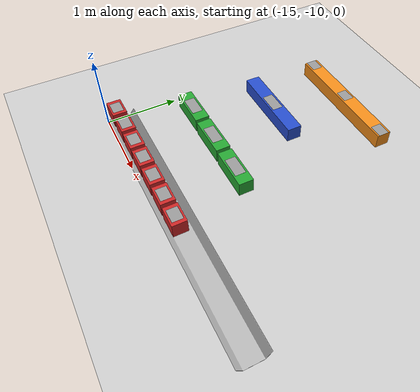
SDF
<sdf version="1.6">
 <world name="default">
  <model name="ground_plane">
   <static>1</static>
   <link name="link">
    <collision name="collision">
     <geometry><plane><normal>0 0 1</normal><size>100 100</size></plane></geometry>
     <surface>
      <contact><collide_bitmask>65535</collide_bitmask></contact>
      <friction><ode><mu>100</mu><mu2>50</mu2></ode></friction>
     </surface>
    </collision>
    <visual name="visual">
     <cast_shadows>0</cast_shadows>
     <geometry><plane><normal>0 0 1</normal><size>100 100</size></plane></geometry>
     <material>
      <script><uri>file://media/materials/scripts/gazebo.material</uri><name>Gazebo/Grey</name></script>
     </material>
    </visual>
   </link>
  </model>
  <model name="channel">
   <link name="base_link">
    <pose>0 0 0.05 0 -0 0</pose>
    <inertial>
     <mass>0.01</mass>
     <inertia><ixx>0.001</ixx><ixy>0</ixy><ixz>0</ixz><iyy>0.01</iyy><iyz>0</iyz><izz>0.01</izz></inertia>
    </inertial>
    <collision name="channel_collision">
     <geometry>
      <mesh><uri>model://larics_gazebo_worlds/models/mbzirc/channel.dae</uri><scale>0.001 0.001 0.001</scale></mesh>
     </geometry>
    </collision>
    <visual name="channel_visual">
     <geometry>
      <mesh><uri>model://larics_gazebo_worlds/models/mbzirc/channel.dae</uri><scale>0.001 0.001 0.001</scale></mesh>
     </geometry>
    </visual>
   </link>
   <static>1</static>
   <pose>-12.9973 -9.81885 0 0 -0 0</pose>
  </model>
  <model name="channel">
   <link name="base_link">
    <pose>0 0 0.05 0 -0 0</pose>
    <inertial>
     <mass>0.01</mass>
     <inertia><ixx>0.001</ixx><ixy>0</ixy><ixz>0</ixz><iyy>0.01</iyy><iyz>0</iyz><izz>0.01</izz></inertia>
    </inertial>
    <collision name="channel_collision">
     <geometry>
      <mesh><uri>model://larics_gazebo_worlds/models/mbzirc/channel.dae</uri><scale>0.001 0.001 0.001</scale></mesh>
     </geometry>
    </collision>
    <visual name="channel_visual">
     <geometry>
      <mesh><uri>model://larics_gazebo_worlds/models/mbzirc/channel.dae</uri><scale>0.001 0.001 0.001</scale></mesh>
     </geometry>
    </visual>
   </link>
   <static>1</static>
   <pose>-12.9973 -9.81885 0 0 -0 0</pose>
  </model>
  <model name="channel">
   <link name="base_link">
    <pose>0 0 0.05 0 -0 0</pose>
    <inertial>
     <mass>0.01</mass>
     <inertia><ixx>0.001</ixx><ixy>0</ixy><ixz>0</ixz><iyy>0.01</iyy><iyz>0</iyz><izz>0.01</izz></inertia>
    </inertial>
    <collision name="channel_collision">
     <geometry>
      <mesh><uri>model://larics_gazebo_worlds/models/mbzirc/channel.dae</uri><scale>0.001 0.001 0.001</scale></mesh>
     </geometry>
    </collision>
    <visual name="channel_visual">
     <geometry>
      <mesh><uri>model://larics_gazebo_worlds/models/mbzirc/channel.dae</uri><scale>0.001 0.001 0.001</scale></mesh>
     </geometry>
    </visual>
   </link>
   <static>1</static>
   <pose>-12.9973 -9.81885 0 0 -0 0</pose>
  </model>
  <model name="channel">
   <link name="base_link">
    <pose>0 0 0.05 0 -0 0</pose>
    <inertial>
     <mass>0.01</mass>
     <inertia><ixx>0.001</ixx><ixy>0</ixy><ixz>0</ixz><iyy>0.01</iyy><iyz>0</iyz><izz>0.01</izz></inertia>
    </inertial>
    <collision name="channel_collision">
     <geometry>
      <mesh><uri>model://larics_gazebo_worlds/models/mbzirc/channel.dae</uri><scale>0.001 0.001 0.001</scale></mesh>
     </geometry>
    </collision>
    <visual name="channel_visual">
     <geometry>
      <mesh><uri>model://larics_gazebo_worlds/models/mbzirc/channel.dae</uri><scale>0.001 0.001 0.001</scale></mesh>
     </geometry>
    </visual>
   </link>
   <static>1</static>
   <pose>-12.9973 -9.81885 0 0 -0 0</pose>
  </model>
  <model name="channel">
   <link name="base_link">
    <pose>0 0 0.05 0 -0 0</pose>
    <inertial>
     <mass>0.01</mass>
     <inertia><ixx>0.001</ixx><ixy>0</ixy><ixz>0</ixz><iyy>0.01</iyy><iyz>0</iyz><izz>0.01</izz></inertia>
    </inertial>
    <collision name="channel_collision">
     <geometry>
      <mesh><uri>model://larics_gazebo_worlds/models/mbzirc/channel.dae</uri><scale>0.001 0.001 0.001</scale></mesh>
     </geometry>
    </collision>
    <visual name="channel_visual">
     <geometry>
      <mesh><uri>model://larics_gazebo_worlds/models/mbzirc/channel.dae</uri><scale>0.001 0.001 0.001</scale></mesh>
     </geometry>
    </visual>
   </link>
   <static>1</static>
   <pose>-12.9973 -9.81885 0 0 -0 0</pose>
  </model>
  <model name="channel">
   <link name="base_link">
    <pose>0 0 0.05 0 -0 0</pose>
    <inertial>
     <mass>0.01</mass>
     <inertia><ixx>0.001</ixx><ixy>0</ixy><ixz>0</ixz><iyy>0.01</iyy><iyz>0</iyz><izz>0.01</izz></inertia>
    </inertial>
    <collision name="channel_collision">
     <geometry>
      <mesh><uri>model://larics_gazebo_worlds/models/mbzirc/channel.dae</uri><scale>0.001 0.001 0.001</scale></mesh>
     </geometry>
    </collision>
    <visual name="channel_visual">
     <geometry>
      <mesh><uri>model://larics_gazebo_worlds/models/mbzirc/channel.dae</uri><scale>0.001 0.001 0.001</scale></mesh>
     </geometry>
    </visual>
   </link>
   <static>1</static>
   <pose>-12.9973 -9.81885 0 0 -0 0</pose>
  </model>
  <model name="channel">
   <link name="base_link">
    <pose>0 0 0.05 0 -0 0</pose>
    <inertial>
     <mass>0.01</mass>
     <inertia><ixx>0.001</ixx><ixy>0</ixy><ixz>0</ixz><iyy>0.01</iyy><iyz>0</iyz><izz>0.01</izz></inertia>
    </inertial>
    <collision name="channel_collision">
     <geometry>
      <mesh><uri>model://larics_gazebo_worlds/models/mbzirc/channel.dae</uri><scale>0.001 0.001 0.001</scale></mesh>
     </geometry>
    </collision>
    <visual name="channel_visual">
     <geometry>
      <mesh><uri>model://larics_gazebo_worlds/models/mbzirc/channel.dae</uri><scale>0.001 0.001 0.001</scale></mesh>
     </geometry>
    </visual>
   </link>
   <static>1</static>
   <pose>-12.9973 -9.81885 0 0 -0 0</pose>
  </model>
  <model name="brick_red_2">
   <link name="base_link">
    <inertial>
     <mass>0.01</mass>
     <inertia><ixx>0.001</ixx><ixy>0</ixy><ixz>0</ixz><iyy>0.01</iyy><iyz>0</iyz><izz>0.01</izz></inertia>
    </inertial>
    <collision name="base_link_collision"><geometry><box><size>0.3 0.2 0.2</size></box></geometry></collision>
    <collision name="base_link_fixed_joint_lump__magnet_patch_collision_1">
     <pose>0 0 0.1 0 -0 0</pose>
     <geometry><box><size>0.1 0.025 0.0005</size></box></geometry>
    </collision>
    <visual name="base_link_visual">
     <geometry><box><size>0.3 0.2 0.2</size></box></geometry>
     <material>
      <script><name>Gazebo/Red</name><uri>file://media/materials/scripts/gazebo.material</uri></script>
     </material>
    </visual>
    <visual name="base_link_fixed_joint_lump__magnet_patch_visual_1">
     <pose>0 0 0.1 0 -0 0</pose>
     <geometry><box><size>0.2 0.15 0.001</size></box></geometry>
     <material>
      <script><name>Gazebo/Gray</name><uri>file://media/materials/scripts/gazebo.material</uri></script>
     </material>
    </visual>
   </link>
   <static>0</static>
   <plugin name="dipole_magnet" filename="libstorm_gazebo_dipole_magnet.so">
    <dipole_moment>0 0 1</dipole_moment>
    <shouldPublish>1</shouldPublish>
    <topicNs>magnet</topicNs>
    <updateRate>100</updateRate>
    <gain>1.0</gain>
    <bodyName>base_link</bodyName>
    <xyzOffset>0 0 -0.1</xyzOffset>
    <rpyOffset>0 -0 0</rpyOffset>
   </plugin>
   <pose>-12.9001 -9.84372 0.102795 0.000441 -1e-06 5e-06</pose>
  </model>
  <model name="brick_red_5">
   <link name="base_link">
    <inertial>
     <mass>0.01</mass>
     <inertia><ixx>0.001</ixx><ixy>0</ixy><ixz>0</ixz><iyy>0.01</iyy><iyz>0</iyz><izz>0.01</izz></inertia>
    </inertial>
    <collision name="base_link_collision"><geometry><box><size>0.3 0.2 0.2</size></box></geometry></collision>
    <collision name="base_link_fixed_joint_lump__magnet_patch_collision_1">
     <pose>0 0 0.1 0 -0 0</pose>
     <geometry><box><size>0.1 0.025 0.0005</size></box></geometry>
    </collision>
    <visual name="base_link_visual">
     <geometry><box><size>0.3 0.2 0.2</size></box></geometry>
     <material>
      <script><name>Gazebo/Red</name><uri>file://media/materials/scripts/gazebo.material</uri></script>
     </material>
    </visual>
    <visual name="base_link_fixed_joint_lump__magnet_patch_visual_1">
     <pose>0 0 0.1 0 -0 0</pose>
     <geometry><box><size>0.2 0.15 0.001</size></box></geometry>
     <material>
      <script><name>Gazebo/Gray</name><uri>file://media/materials/scripts/gazebo.material</uri></script>
     </material>
    </visual>
   </link>
   <static>0</static>
   <plugin name="dipole_magnet" filename="libstorm_gazebo_dipole_magnet.so">
    <dipole_moment>0 0 1</dipole_moment>
    <shouldPublish>1</shouldPublish>
    <topicNs>magnet</topicNs>
    <updateRate>100</updateRate>
    <gain>1.0</gain>
    <bodyName>base_link</bodyName>
    <xyzOffset>0 0 -0.1</xyzOffset>
    <rpyOffset>0 -0 0</rpyOffset>
   </plugin>
   <pose>-13.2501 -9.84332 0.102794 0.000459 -0 -0.002704</pose>
  </model>
  <model name="brick_red_6">
   <link name="base_link">
    <inertial>
     <mass>0.01</mass>
     <inertia><ixx>0.001</ixx><ixy>0</ixy><ixz>0</ixz><iyy>0.01</iyy><iyz>0</iyz><izz>0.01</izz></inertia>
    </inertial>
    <collision name="base_link_collision"><geometry><box><size>0.3 0.2 0.2</size></box></geometry></collision>
    <collision name="base_link_fixed_joint_lump__magnet_patch_collision_1">
     <pose>0 0 0.1 0 -0 0</pose>
     <geometry><box><size>0.1 0.025 0.0005</size></box></geometry>
    </collision>
    <visual name="base_link_visual">
     <geometry><box><size>0.3 0.2 0.2</size></box></geometry>
     <material>
      <script><name>Gazebo/Red</name><uri>file://media/materials/scripts/gazebo.material</uri></script>
     </material>
    </visual>
    <visual name="base_link_fixed_joint_lump__magnet_patch_visual_1">
     <pose>0 0 0.1 0 -0 0</pose>
     <geometry><box><size>0.2 0.15 0.001</size></box></geometry>
     <material>
      <script><name>Gazebo/Gray</name><uri>file://media/materials/scripts/gazebo.material</uri></script>
     </material>
    </visual>
   </link>
   <static>0</static>
   <plugin name="dipole_magnet" filename="libstorm_gazebo_dipole_magnet.so">
    <dipole_moment>0 0 1</dipole_moment>
    <shouldPublish>1</shouldPublish>
    <topicNs>magnet</topicNs>
    <updateRate>100</updateRate>
    <gain>1.0</gain>
    <bodyName>base_link</bodyName>
    <xyzOffset>0 0 -0.1</xyzOffset>
    <rpyOffset>0 -0 0</rpyOffset>
   </plugin>
   <pose>-13.6 -9.84345 0.102785 0.000457 -0 -0.001813</pose>
  </model>
  <model name="brick_green">
   <link name="base_link">
    <inertial>
     <mass>0.01</mass>
     <inertia><ixx>0.001</ixx><ixy>0</ixy><ixz>0</ixz><iyy>0.01</iyy><iyz>0</iyz><izz>0.01</izz></inertia>
    </inertial>
    <collision name="base_link_collision"><geometry><box><size>0.6 0.2 0.2</size></box></geometry></collision>
    <collision name="base_link_fixed_joint_lump__magnet_patch_collision_1">
     <pose>0 0 0.1 0 -0 0</pose>
     <geometry><box><size>0.1 0.025 0.0005</size></box></geometry>
    </collision>
    <visual name="base_link_visual">
     <geometry><box><size>0.6 0.2 0.2</size></box></geometry>
     <material>
      <script><name>Gazebo/Green</name><uri>file://media/materials/scripts/gazebo.material</uri></script>
     </material>
    </visual>
    <visual name="base_link_fixed_joint_lump__magnet_patch_visual_1">
     <pose>0 0 0.1 0 -0 0</pose>
     <geometry><box><size>0.3 0.15 0.001</size></box></geometry>
     <material>
      <script><name>Gazebo/Gray</name><uri>file://media/materials/scripts/gazebo.material</uri></script>
     </material>
    </visual>
   </link>
   <static>0</static>
   <plugin name="dipole_magnet" filename="libstorm_gazebo_dipole_magnet.so">
    <dipole_moment>0 0 1</dipole_moment>
    <shouldPublish>1</shouldPublish>
    <topicNs>magnet</topicNs>
    <updateRate>100</updateRate>
    <gain>1.0</gain>
    <bodyName>base_link</bodyName>
    <xyzOffset>0 0 -0.1</xyzOffset>
    <rpyOffset>0 -0 0</rpyOffset>
   </plugin>
   <pose>-13.9 -8.87892 0.102795 0.000457 -4e-06 0.008422</pose>
  </model>
  <model name="brick_green_0">
   <link name="base_link">
    <inertial>
     <mass>0.01</mass>
     <inertia><ixx>0.001</ixx><ixy>0</ixy><ixz>0</ixz><iyy>0.01</iyy><iyz>0</iyz><izz>0.01</izz></inertia>
    </inertial>
    <collision name="base_link_collision"><geometry><box><size>0.6 0.2 0.2</size></box></geometry></collision>
    <collision name="base_link_fixed_joint_lump__magnet_patch_collision_1">
     <pose>0 0 0.1 0 -0 0</pose>
     <geometry><box><size>0.1 0.025 0.0005</size></box></geometry>
    </collision>
    <visual name="base_link_visual">
     <geometry><box><size>0.6 0.2 0.2</size></box></geometry>
     <material>
      <script><name>Gazebo/Green</name><uri>file://media/materials/scripts/gazebo.material</uri></script>
     </material>
    </visual>
    <visual name="base_link_fixed_joint_lump__magnet_patch_visual_1">
     <pose>0 0 0.1 0 -0 0</pose>
     <geometry><box><size>0.3 0.15 0.001</size></box></geometry>
     <material>
      <script><name>Gazebo/Gray</name><uri>file://media/materials/scripts/gazebo.material</uri></script>
     </material>
    </visual>
   </link>
   <static>0</static>
   <plugin name="dipole_magnet" filename="libstorm_gazebo_dipole_magnet.so">
    <dipole_moment>0 0 1</dipole_moment>
    <shouldPublish>1</shouldPublish>
    <topicNs>magnet</topicNs>
    <updateRate>100</updateRate>
    <gain>1.0</gain>
    <bodyName>base_link</bodyName>
    <xyzOffset>0 0 -0.1</xyzOffset>
    <rpyOffset>0 -0 0</rpyOffset>
   </plugin>
   <pose>-13.25 -8.88068 0.102795 0.000461 -0 0.001005</pose>
  </model>
  <model name="brick_green_1">
   <link name="base_link">
    <inertial>
     <mass>0.01</mass>
     <inertia><ixx>0.001</ixx><ixy>0</ixy><ixz>0</ixz><iyy>0.01</iyy><iyz>0</iyz><izz>0.01</izz></inertia>
    </inertial>
    <collision name="base_link_collision"><geometry><box><size>0.6 0.2 0.2</size></box></geometry></collision>
    <collision name="base_link_fixed_joint_lump__magnet_patch_collision_1">
     <pose>0 0 0.1 0 -0 0</pose>
     <geometry><box><size>0.1 0.025 0.0005</size></box></geometry>
    </collision>
    <visual name="base_link_visual">
     <geometry><box><size>0.6 0.2 0.2</size></box></geometry>
     <material>
      <script><name>Gazebo/Green</name><uri>file://media/materials/scripts/gazebo.material</uri></script>
     </material>
    </visual>
    <visual name="base_link_fixed_joint_lump__magnet_patch_visual_1">
     <pose>0 0 0.1 0 -0 0</pose>
     <geometry><box><size>0.3 0.15 0.001</size></box></geometry>
     <material>
      <script><name>Gazebo/Gray</name><uri>file://media/materials/scripts/gazebo.material</uri></script>
     </material>
    </visual>
   </link>
   <static>0</static>
   <plugin name="dipole_magnet" filename="libstorm_gazebo_dipole_magnet.so">
    <dipole_moment>0 0 1</dipole_moment>
    <shouldPublish>1</shouldPublish>
    <topicNs>magnet</topicNs>
    <updateRate>100</updateRate>
    <gain>1.0</gain>
    <bodyName>base_link</bodyName>
    <xyzOffset>0 0 -0.1</xyzOffset>
    <rpyOffset>0 -0 0</rpyOffset>
   </plugin>
   <pose>-14.5498 -8.87826 0.102796 0.000457 -3e-06 0.006556</pose>
  </model>
  <model name="brick_red_7">
   <link name="base_link">
    <inertial>
     <mass>0.01</mass>
     <inertia><ixx>0.001</ixx><ixy>0</ixy><ixz>0</ixz><iyy>0.01</iyy><iyz>0</iyz><izz>0.01</izz></inertia>
    </inertial>
    <collision name="base_link_collision"><geometry><box><size>0.3 0.2 0.2</size></box></geometry></collision>
    <collision name="base_link_fixed_joint_lump__magnet_patch_collision_1">
     <pose>0 0 0.1 0 -0 0</pose>
     <geometry><box><size>0.1 0.025 0.0005</size></box></geometry>
    </collision>
    <visual name="base_link_visual">
     <geometry><box><size>0.3 0.2 0.2</size></box></geometry>
     <material>
      <script><name>Gazebo/Red</name><uri>file://media/materials/scripts/gazebo.material</uri></script>
     </material>
    </visual>
    <visual name="base_link_fixed_joint_lump__magnet_patch_visual_1">
     <pose>0 0 0.1 0 -0 0</pose>
     <geometry><box><size>0.2 0.15 0.001</size></box></geometry>
     <material>
      <script><name>Gazebo/Gray</name><uri>file://media/materials/scripts/gazebo.material</uri></script>
     </material>
    </visual>
   </link>
   <static>0</static>
   <plugin name="dipole_magnet" filename="libstorm_gazebo_dipole_magnet.so">
    <dipole_moment>0 0 1</dipole_moment>
    <shouldPublish>1</shouldPublish>
    <topicNs>magnet</topicNs>
    <updateRate>100</updateRate>
    <gain>1.0</gain>
    <bodyName>base_link</bodyName>
    <xyzOffset>0 0 -0.1</xyzOffset>
    <rpyOffset>0 -0 0</rpyOffset>
   </plugin>
   <pose>-13.9499 -9.84294 0.102785 0.000457 -2e-06 0.005133</pose>
  </model>
  <model name="brick_red_8">
   <link name="base_link">
    <inertial>
     <mass>0.01</mass>
     <inertia><ixx>0.001</ixx><ixy>0</ixy><ixz>0</ixz><iyy>0.01</iyy><iyz>0</iyz><izz>0.01</izz></inertia>
    </inertial>
    <collision name="base_link_collision"><geometry><box><size>0.3 0.2 0.2</size></box></geometry></collision>
    <collision name="base_link_fixed_joint_lump__magnet_patch_collision_1">
     <pose>0 0 0.1 0 -0 0</pose>
     <geometry><box><size>0.1 0.025 0.0005</size></box></geometry>
    </collision>
    <visual name="base_link_visual">
     <geometry><box><size>0.3 0.2 0.2</size></box></geometry>
     <material>
      <script><name>Gazebo/Red</name><uri>file://media/materials/scripts/gazebo.material</uri></script>
     </material>
    </visual>
    <visual name="base_link_fixed_joint_lump__magnet_patch_visual_1">
     <pose>0 0 0.1 0 -0 0</pose>
     <geometry><box><size>0.2 0.15 0.001</size></box></geometry>
     <material>
      <script><name>Gazebo/Gray</name><uri>file://media/materials/scripts/gazebo.material</uri></script>
     </material>
    </visual>
   </link>
   <static>0</static>
   <plugin name="dipole_magnet" filename="libstorm_gazebo_dipole_magnet.so">
    <dipole_moment>0 0 1</dipole_moment>
    <shouldPublish>1</shouldPublish>
    <topicNs>magnet</topicNs>
    <updateRate>100</updateRate>
    <gain>1.0</gain>
    <bodyName>base_link</bodyName>
    <xyzOffset>0 0 -0.1</xyzOffset>
    <rpyOffset>0 -0 0</rpyOffset>
   </plugin>
   <pose>-14.2991 -9.84299 0.102794 0.000457 -2e-06 0.004861</pose>
  </model>
  <model name="brick_blue">
   <link name="base_link">
    <inertial>
     <mass>0.01</mass>
     <inertia><ixx>0.001</ixx><ixy>0</ixy><ixz>0</ixz><iyy>0.01</iyy><iyz>0</iyz><izz>0.01</izz></inertia>
    </inertial>
    <collision name="base_link_collision"><geometry><box><size>1.2 0.2 0.2</size></box></geometry></collision>
    <collision name="base_link_fixed_joint_lump__magnet_patch_collision_1">
     <pose>0 0 0.1 0 -0 0</pose>
     <geometry><box><size>0.1 0.025 0.0005</size></box></geometry>
    </collision>
    <visual name="base_link_visual">
     <geometry><box><size>1.2 0.2 0.2</size></box></geometry>
     <material>
      <script><name>Gazebo/Blue</name><uri>file://media/materials/scripts/gazebo.material</uri></script>
     </material>
    </visual>
    <visual name="base_link_fixed_joint_lump__magnet_patch_visual_1">
     <pose>0 0 0.1 0 -0 0</pose>
     <geometry><box><size>0.3 0.15 0.001</size></box></geometry>
     <material>
      <script><name>Gazebo/Gray</name><uri>file://media/materials/scripts/gazebo.material</uri></script>
     </material>
    </visual>
   </link>
   <static>0</static>
   <plugin name="dipole_magnet" filename="libstorm_gazebo_dipole_magnet.so">
    <dipole_moment>0 0 1</dipole_moment>
    <shouldPublish>1</shouldPublish>
    <topicNs>magnet</topicNs>
    <updateRate>100</updateRate>
    <gain>1.0</gain>
    <bodyName>base_link</bodyName>
    <xyzOffset>0 0 -0.1</xyzOffset>
    <rpyOffset>0 -0 0</rpyOffset>
   </plugin>
   <pose>-14.1 -7.85961 0.102811 0.000457 0 -0.000982</pose>
  </model>
  <model name="brick_orange_0">
   <link name="base_link">
    <inertial>
     <mass>0.01</mass>
     <inertia><ixx>0.001</ixx><ixy>0</ixy><ixz>0</ixz><iyy>0.01</iyy><iyz>0</iyz><izz>0.01</izz></inertia>
    </inertial>
    <collision name="base_link_collision"><geometry><box><size>1.8 0.2 0.2</size></box></geometry></collision>
    <collision name="base_link_fixed_joint_lump__magnet_patch_collision_0">
     <pose>-0.805 0 0.1 0 -0 0</pose>
     <geometry><box><size>0.2 0.15 0.0005</size></box></geometry>
    </collision>
    <collision name="base_link_fixed_joint_lump__magnet_patch_collision_1">
     <pose>0 0 0.1 0 -0 0</pose>
     <geometry><box><size>0.15 0.15 0.0005</size></box></geometry>
    </collision>
    <collision name="base_link_fixed_joint_lump__magnet_patch_collision_2">
     <pose>0.805 0 0.1 0 -0 0</pose>
     <geometry><box><size>0.15 0.15 0.0005</size></box></geometry>
    </collision>
    <visual name="base_link_visual">
     <geometry><box><size>1.8 0.2 0.2</size></box></geometry>
     <material>
      <script><name>Gazebo/Orange</name><uri>file://media/materials/scripts/gazebo.material</uri></script>
     </material>
    </visual>
    <visual name="base_link_fixed_joint_lump__magnet_patch_visual_0">
     <pose>-0.805 0 0.1 0 -0 0</pose>
     <geometry><box><size>0.19 0.15 0.001</size></box></geometry>
     <material>
      <script><name>Gazebo/Gray</name><uri>file://media/materials/scripts/gazebo.material</uri></script>
     </material>
    </visual>
    <visual name="base_link_fixed_joint_lump__magnet_patch_visual_1">
     <pose>0 0 0.1 0 -0 0</pose>
     <geometry><box><size>0.19 0.15 0.001</size></box></geometry>
     <material>
      <script><name>Gazebo/Gray</name><uri>file://media/materials/scripts/gazebo.material</uri></script>
     </material>
    </visual>
    <visual name="base_link_fixed_joint_lump__magnet_patch_visual_2">
     <pose>0.805 0 0.1 0 -0 0</pose>
     <geometry><box><size>0.19 0.15 0.001</size></box></geometry>
     <material>
      <script><name>Gazebo/Gray</name><uri>file://media/materials/scripts/gazebo.material</uri></script>
     </material>
    </visual>
   </link>
   <static>0</static>
   <plugin name="dipole_magnet" filename="libstorm_gazebo_dipole_magnet.so">
    <dipole_moment>0 0 1</dipole_moment>
    <shouldPublish>1</shouldPublish>
    <topicNs>magnet</topicNs>
    <updateRate>100</updateRate>
    <gain>1.0</gain>
    <bodyName>base_link</bodyName>
    <xyzOffset>0 0 -0.1</xyzOffset>
    <rpyOffset>0 -0 0</rpyOffset>
   </plugin>
   <plugin name="dipole_magnet" filename="libstorm_gazebo_dipole_magnet.so">
    <dipole_moment>0 0 1</dipole_moment>
    <shouldPublish>1</shouldPublish>
    <topicNs>magnet</topicNs>
    <updateRate>100</updateRate>
    <gain>1.0</gain>
    <bodyName>base_link</bodyName>
    <xyzOffset>-0.805 0 -0.1</xyzOffset>
    <rpyOffset>0 -0 0</rpyOffset>
   </plugin>
   <plugin name="dipole_magnet" filename="libstorm_gazebo_dipole_magnet.so">
    <dipole_moment>0 0 1</dipole_moment>
    <shouldPublish>1</shouldPublish>
    <topicNs>magnet</topicNs>
    <updateRate>100</updateRate>
    <gain>1.0</gain>
    <bodyName>base_link</bodyName>
    <xyzOffset>0.805 0 -0.1</xyzOffset>
    <rpyOffset>0 -0 0</rpyOffset>
   </plugin>
   <pose>-13.75 -6.87167 0.102803 0.000457 0 -1e-06</pose>
  </model>
  <model name="brick_red_9">
   <link name="base_link">
    <inertial>
     <mass>0.01</mass>
     <inertia><ixx>0.001</ixx><ixy>0</ixy><ixz>0</ixz><iyy>0.01</iyy><iyz>0</iyz><izz>0.01</izz></inertia>
    </inertial>
    <collision name="base_link_collision"><geometry><box><size>0.3 0.2 0.2</size></box></geometry></collision>
    <collision name="base_link_fixed_joint_lump__magnet_patch_collision_1">
     <pose>0 0 0.1 0 -0 0</pose>
     <geometry><box><size>0.1 0.025 0.0005</size></box></geometry>
    </collision>
    <visual name="base_link_visual">
     <geometry><box><size>0.3 0.2 0.2</size></box></geometry>
     <material>
      <script><name>Gazebo/Red</name><uri>file://media/materials/scripts/gazebo.material</uri></script>
     </material>
    </visual>
    <visual name="base_link_fixed_joint_lump__magnet_patch_visual_1">
     <pose>0 0 0.1 0 -0 0</pose>
     <geometry><box><size>0.2 0.15 0.001</size></box></geometry>
     <material>
      <script><name>Gazebo/Gray</name><uri>file://media/materials/scripts/gazebo.material</uri></script>
     </material>
    </visual>
   </link>
   <static>0</static>
   <plugin name="dipole_magnet" filename="libstorm_gazebo_dipole_magnet.so">
    <dipole_moment>0 0 1</dipole_moment>
    <shouldPublish>1</shouldPublish>
    <topicNs>magnet</topicNs>
    <updateRate>100</updateRate>
    <gain>1.0</gain>
    <bodyName>base_link</bodyName>
    <xyzOffset>0 0 -0.1</xyzOffset>
    <rpyOffset>0 -0 0</rpyOffset>
   </plugin>
   <pose>-14.65 -9.841 0.102795 0.000454 -1e-06 0.000151</pose>
  </model>
  <model name="brick_red_10">
   <link name="base_link">
    <inertial>
     <mass>0.01</mass>
     <inertia><ixx>0.001</ixx><ixy>0</ixy><ixz>0</ixz><iyy>0.01</iyy><iyz>0</iyz><izz>0.01</izz></inertia>
    </inertial>
    <collision name="base_link_collision"><geometry><box><size>0.3 0.2 0.2</size></box></geometry></collision>
    <collision name="base_link_fixed_joint_lump__magnet_patch_collision_1">
     <pose>0 0 0.1 0 -0 0</pose>
     <geometry><box><size>0.1 0.025 0.0005</size></box></geometry>
    </collision>
    <visual name="base_link_visual">
     <geometry><box><size>0.3 0.2 0.2</size></box></geometry>
     <material>
      <script><name>Gazebo/Red</name><uri>file://media/materials/scripts/gazebo.material</uri></script>
     </material>
    </visual>
    <visual name="base_link_fixed_joint_lump__magnet_patch_visual_1">
     <pose>0 0 0.1 0 -0 0</pose>
     <geometry><box><size>0.2 0.15 0.001</size></box></geometry>
     <material>
      <script><name>Gazebo/Gray</name><uri>file://media/materials/scripts/gazebo.material</uri></script>
     </material>
    </visual>
   </link>
   <static>0</static>
   <plugin name="dipole_magnet" filename="libstorm_gazebo_dipole_magnet.so">
    <dipole_moment>0 0 1</dipole_moment>
    <shouldPublish>1</shouldPublish>
    <topicNs>magnet</topicNs>
    <updateRate>100</updateRate>
    <gain>1.0</gain>
    <bodyName>base_link</bodyName>
    <xyzOffset>0 0 -0.1</xyzOffset>
    <rpyOffset>0 -0 0</rpyOffset>
   </plugin>
   <pose>-15.0081 -9.84368 0.102612 0.000415 -0.017292 0.002225</pose>
  </model>
 </world>
</sdf>
